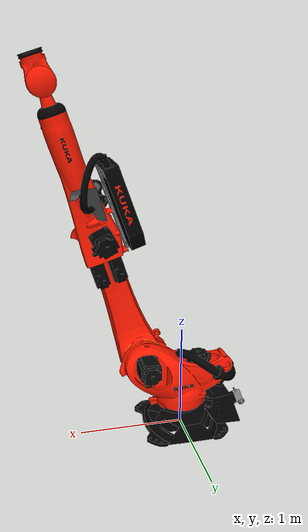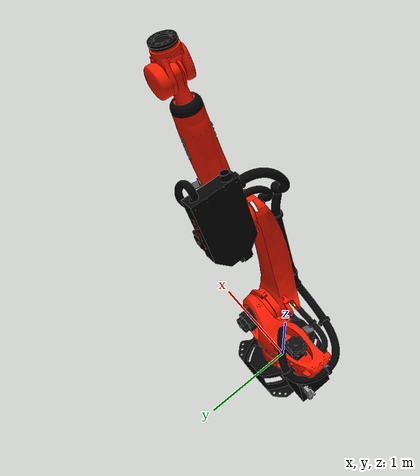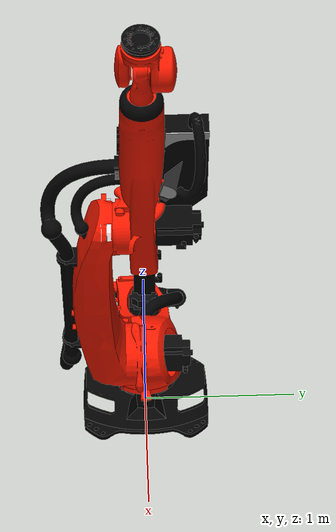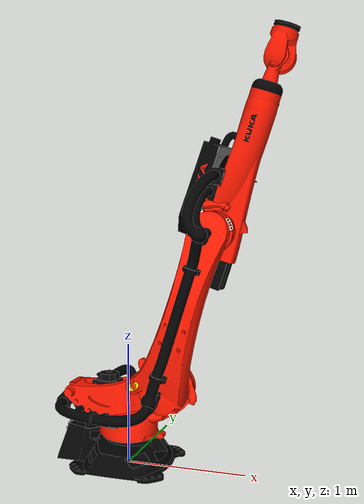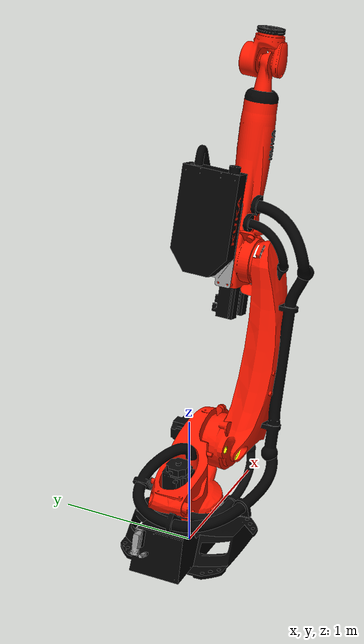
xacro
<?xml version="1.0" encoding="UTF-8"?>
<robot xmlns:xacro="http://ros.org/wiki/xacro" name="kr210_r3100_ultra">
  <!-- Import macro files  -->
  <xacro:include filename="$(find kuka_quantec_support)/urdf/kr210_r3100_ultra_macro.xacro"/>
  <xacro:include filename="$(find kuka_quantec_support)/urdf/kr_quantec_ros2_control_macro.xacro"/>
  <!-- Read additional arguments  -->
  <xacro:arg name="driver_version" default="rsi_only"/>
  <xacro:arg name="mode" default="hardware"/>
  <xacro:arg name="gpio_config" default=""/>
  <xacro:arg name="roundtrip_time" default="0"/>
  <xacro:arg name="client_ip" default="0.0.0.0"/>
  <xacro:arg name="client_port" default="59152"/>
  <xacro:arg name="mxa_client_port" default="1337"/>
  <xacro:arg name="controller_ip" default="0.0.0.0"/>
  <xacro:arg name="verify_robot_model" default="true"/>
  <xacro:arg name="prefix" default=""/>
  <xacro:arg name="x" default="0"/>
  <xacro:arg name="y" default="0"/>
  <xacro:arg name="z" default="0"/>
  <xacro:arg name="roll" default="0"/>
  <xacro:arg name="pitch" default="0"/>
  <xacro:arg name="yaw" default="0"/>
  <xacro:arg name="rsi_xml_config_file" default=""/>
  <xacro:kuka_quantec_ros2_control name="$(arg prefix)kr210_r3100_ultra" driver_version="$(arg driver_version)" client_ip="$(arg client_ip)" client_port="$(arg client_port)" mxa_client_port="$(arg mxa_client_port)" controller_ip="$(arg controller_ip)" prefix="$(arg prefix)" mode="$(arg mode)" gpio_config="$(arg gpio_config)" roundtrip_time="$(arg roundtrip_time)" verify_robot_model="$(arg verify_robot_model)" rsi_xml_config_file="$(arg rsi_xml_config_file)">
    <ext_axes_ros2_control_joints/>
  </xacro:kuka_quantec_ros2_control>
  <!-- world link -->
  <link name="world"/>
  <!-- robot links, joints -->
  <xacro:kuka_kr210_r3100_ultra_robot prefix="$(arg prefix)" package_name="kuka_quantec_support"/>
  <!-- default world - base_link joint -->
  <joint name="$(arg prefix)world-base_link" type="fixed">
    <parent link="world"/>
    <child link="$(arg prefix)base_link"/>
    <origin xyz="$(arg x) $(arg y) $(arg z)" rpy="$(arg roll) $(arg pitch) $(arg yaw)"/>
  </joint>
</robot>

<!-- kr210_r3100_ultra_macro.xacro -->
<robot xmlns:xacro="http://www.ros.org/wiki/xacro" name="kr210_r3100_ultra">
  <xacro:macro name="kuka_kr210_r3100_ultra_robot" params="prefix package_name">
    <link name="${prefix}base"/>
    <link name="${prefix}base_link">
      <collision>
        <geometry>
          <mesh filename="package://${package_name}/meshes/kr210_r3100_ultra/collision/base_link.stl"/>
        </geometry>
        <origin rpy="0.0 -0.0 0.0" xyz="0.0 0.0 0.0"/>
      </collision>
      <inertial>
        <inertia ixx="0.0" ixy="0.0" ixz="0.0" iyy="0.0" iyz="0.0" izz="0.0"/>
        <mass value="2.2839E2"/>
        <origin rpy="0.0 -0.0 0.0" xyz="0.0 0.0 0.0"/>
      </inertial>
      <visual>
        <geometry>
          <mesh filename="package://${package_name}/meshes/kr210_r3100_ultra/visual/base_link.dae"/>
        </geometry>
        <origin rpy="0.0 -0.0 0.0" xyz="0.0 0.0 0.0"/>
      </visual>
    </link>
    <link name="${prefix}flange"/>
    <link name="${prefix}link_1">
      <collision>
        <geometry>
          <mesh filename="package://${package_name}/meshes/kr210_r3100_ultra/collision/link_1.stl"/>
        </geometry>
        <origin rpy="0.0 -0.0 0.0" xyz="0.0 0.0 -0.675"/>
      </collision>
      <inertial>
        <inertia ixx="0.0" ixy="0.0" ixz="0.0" iyy="0.0" iyz="0.0" izz="31.24"/>
        <mass value="3.95720001E2"/>
        <origin rpy="0.0 -0.0 0.0" xyz="0.076220001 0.01017 -0.547549988"/>
      </inertial>
      <visual>
        <geometry>
          <mesh filename="package://${package_name}/meshes/kr210_r3100_ultra/visual/link_1.dae"/>
        </geometry>
        <origin rpy="0.0 -0.0 0.0" xyz="0.0 0.0 -0.675"/>
      </visual>
    </link>
    <link name="${prefix}link_2">
      <collision>
        <geometry>
          <mesh filename="package://${package_name}/meshes/kr210_r3100_ultra/collision/link_2.stl"/>
        </geometry>
        <origin rpy="1.5707963267948966 0.0 1.5707963267948966" xyz="-0.675 -0.35 4.133182947122317e-17"/>
      </collision>
      <inertial>
        <inertia ixx="6.36" ixy="0.0" ixz="0.0" iyy="81.129997" iyz="0.0" izz="81.779999"/>
        <mass value="2.56149994E2"/>
        <origin rpy="1.5707963267948966 -0.0 -3.141592653589793" xyz="0.564940002 0.0 0.0"/>
      </inertial>
      <visual>
        <geometry>
          <mesh filename="package://${package_name}/meshes/kr210_r3100_ultra/visual/link_2.dae"/>
        </geometry>
        <origin rpy="1.5707963267948966 0.0 1.5707963267948966" xyz="-0.675 -0.35 4.133182947122317e-17"/>
      </visual>
    </link>
    <link name="${prefix}link_3">
      <collision>
        <geometry>
          <mesh filename="package://${package_name}/meshes/kr210_r3100_ultra/collision/link_3.stl"/>
        </geometry>
        <origin rpy="1.5707963267948966 0.0 1.5707963267948966" xyz="-2.0250000000000004 -0.35 4.1331829471223196e-17"/>
      </collision>
      <inertial>
        <inertia ixx="3.48" ixy="0.0" ixz="0.0" iyy="42.060001" iyz="0.0" izz="43.07"/>
        <mass value="1.86610001E2"/>
        <origin rpy="-1.5707963267948966 -0.0 1.5707963267948966" xyz="-0.041 0.260540009 0.0"/>
      </inertial>
      <visual>
        <geometry>
          <mesh filename="package://${package_name}/meshes/kr210_r3100_ultra/visual/link_3.dae"/>
        </geometry>
        <origin rpy="1.5707963267948966 0.0 1.5707963267948966" xyz="-2.0250000000000004 -0.35 4.1331829471223196e-17"/>
      </visual>
    </link>
    <link name="${prefix}link_4">
      <collision>
        <geometry>
          <mesh filename="package://${package_name}/meshes/kr210_r3100_ultra/collision/link_4.stl"/>
        </geometry>
        <origin rpy="3.141592653589793 1.5707963267948966 0.0" xyz="1.9840000000000002 -6.582476545417024e-17 1.75"/>
      </collision>
      <inertial>
        <inertia ixx="0.83" ixy="0.0" ixz="0.0" iyy="2.31" iyz="0.0" izz="2.53"/>
        <mass value="7.8879997E1"/>
        <origin rpy="0.0 1.5707963267948966 -0.0" xyz="0.0 0.0 0.01497"/>
      </inertial>
      <visual>
        <geometry>
          <mesh filename="package://${package_name}/meshes/kr210_r3100_ultra/visual/link_4.dae"/>
        </geometry>
        <origin rpy="3.141592653589793 1.5707963267948966 0.0" xyz="1.9840000000000002 -6.582476545417024e-17 1.75"/>
      </visual>
    </link>
    <link name="${prefix}link_5">
      <collision>
        <geometry>
          <mesh filename="package://${package_name}/meshes/kr210_r3100_ultra/collision/link_5.stl"/>
        </geometry>
        <origin rpy="1.5707963267948966 0.0 1.5707963267948966" xyz="-1.9840000000000002 -1.75 4.133182947122316e-17"/>
      </collision>
      <inertial>
        <inertia ixx="0.0" ixy="0.0" ixz="0.0" iyy="0.0" iyz="0.0" izz="0.0"/>
        <mass value="0.0E0"/>
        <origin rpy="0.0 -0.0 0.0" xyz="0.0 0.0 0.0"/>
      </inertial>
      <visual>
        <geometry>
          <mesh filename="package://${package_name}/meshes/kr210_r3100_ultra/visual/link_5.dae"/>
        </geometry>
        <origin rpy="1.5707963267948966 0.0 1.5707963267948966" xyz="-1.9840000000000002 -1.75 4.133182947122316e-17"/>
      </visual>
    </link>
    <link name="${prefix}link_6">
      <collision>
        <geometry>
          <mesh filename="package://${package_name}/meshes/kr210_r3100_ultra/collision/link_6.stl"/>
        </geometry>
        <origin rpy="3.141592653589793 1.5707963267948966 0.0" xyz="1.9840000000000002 -6.582476545417024e-17 1.75"/>
      </collision>
      <inertial>
        <inertia ixx="0.0" ixy="0.0" ixz="0.0" iyy="0.0" iyz="0.0" izz="0.0"/>
        <mass value="0.0E0"/>
        <origin rpy="0.0 -0.0 0.0" xyz="0.0 0.0 0.0"/>
      </inertial>
      <visual>
        <geometry>
          <mesh filename="package://${package_name}/meshes/kr210_r3100_ultra/visual/link_6.dae"/>
        </geometry>
        <origin rpy="3.141592653589793 1.5707963267948966 0.0" xyz="1.9840000000000002 -6.582476545417024e-17 1.75"/>
      </visual>
    </link>
    <link name="${prefix}tool0"/>
    <joint name="${prefix}base_link-base" type="fixed">
      <child link="${prefix}base"/>
      <parent link="${prefix}base_link"/>
    </joint>
    <joint name="${prefix}joint_1" type="revolute">
      <axis xyz="0.0 0.0 1.0"/>
      <child link="${prefix}link_1"/>
      <limit effort="9.6E3" lower="-3.2288591125E0" upper="3.2288591125E0" velocity="1.84E0"/>
      <origin rpy="0.0 0.0 0.0" xyz="0.0 0.0 0.675"/>
      <parent link="${prefix}base_link"/>
    </joint>
    <joint name="${prefix}joint_2" type="revolute">
      <axis xyz="0.0 0.0 1.0"/>
      <child link="${prefix}link_2"/>
      <limit effort="9.6E3" lower="-2.44346095E0" upper="-8.72664625E-2" velocity="1.77E0"/>
      <origin rpy="-1.5707963267948966 -0.0 0.0" xyz="0.35000000000000003 0.0 0.0"/>
      <parent link="${prefix}link_1"/>
    </joint>
    <joint name="${prefix}joint_3" type="revolute">
      <axis xyz="0.0 0.0 1.0"/>
      <child link="${prefix}link_3"/>
      <limit effort="6.64852E3" lower="-2.0943951E0" upper="2.7052603375E0" velocity="1.87E0"/>
      <origin rpy="0.0 -0.0 -1.5707963267948966" xyz="1.35 0.0 0.0"/>
      <parent link="${prefix}link_2"/>
    </joint>
    <joint name="${prefix}joint_4" type="revolute">
      <axis xyz="0.0 0.0 1.0"/>
      <child link="${prefix}link_4"/>
      <limit effort="2.17309E3" lower="-6.108652375E0" upper="6.108652375E0" velocity="2.37E0"/>
      <origin rpy="1.5707963267948966 -0.0 0.0" xyz="-0.041 1.4000000000000001 0.0"/>
      <parent link="${prefix}link_3"/>
    </joint>
    <joint name="${prefix}joint_5" type="revolute">
      <axis xyz="0.0 0.0 1.0"/>
      <child link="${prefix}link_5"/>
      <limit effort="2.17309E3" lower="-2.13802833125E0" upper="2.13802833125E0" velocity="2.26E0"/>
      <origin rpy="-1.5707963267948966 -0.0 0.0" xyz="0.0 0.0 0.0"/>
      <parent link="${prefix}link_4"/>
    </joint>
    <joint name="${prefix}joint_6" type="revolute">
      <axis xyz="0.0 0.0 1.0"/>
      <child link="${prefix}link_6"/>
      <limit effort="1.26875E3" lower="-6.108652375E0" upper="6.108652375E0" velocity="3.6E0"/>
      <origin rpy="1.5707963267948966 -0.0 0.0" xyz="0.0 0.0 0.0"/>
      <parent link="${prefix}link_5"/>
    </joint>
    <joint name="${prefix}link6-flange" type="fixed">
      <child link="${prefix}flange"/>
      <origin rpy="0.0 1.5707963267948966 0.0" xyz="0.0 0.0 -0.24"/>
      <parent link="${prefix}link_6"/>
    </joint>
    <joint name="${prefix}link6-tool0" type="fixed">
      <child link="${prefix}tool0"/>
      <origin rpy="0.0 ${pi} 0.0" xyz="0.0 0.0 -0.24"/>
      <parent link="${prefix}link_6"/>
    </joint>
  </xacro:macro>
</robot>
